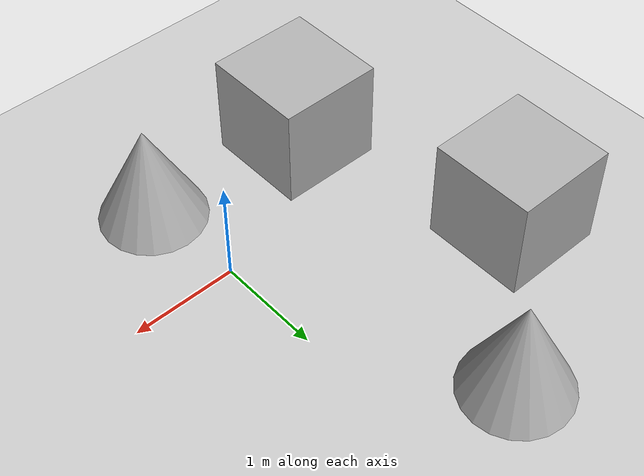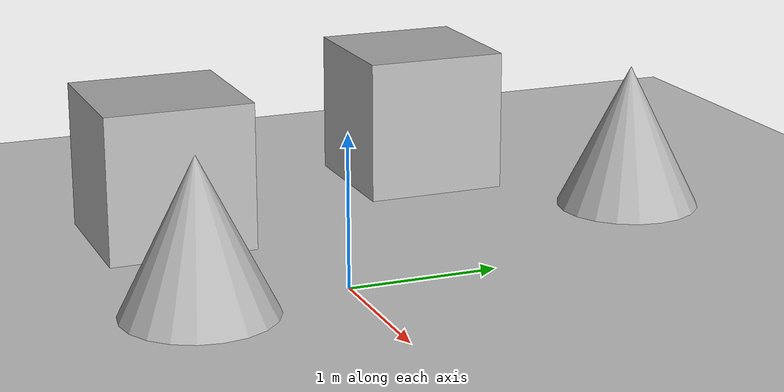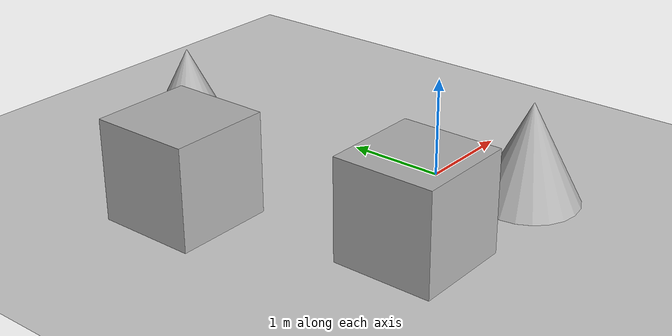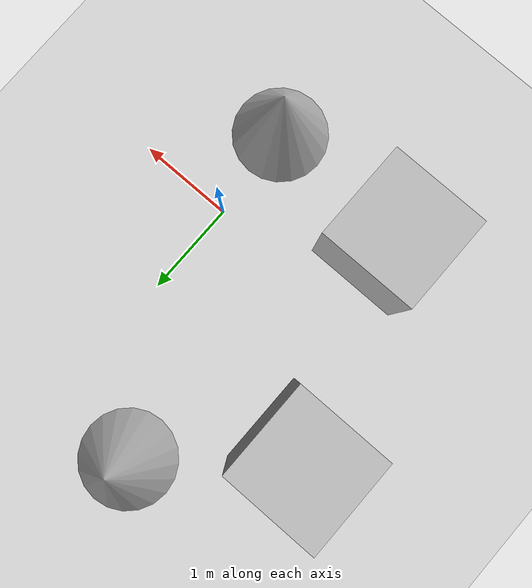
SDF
<sdf version='1.10'>
  <world name='empty'>
    <physics name='1ms' type='ignored'>
      <max_step_size>0.001</max_step_size>
      <real_time_factor>1</real_time_factor>
      <real_time_update_rate>1000</real_time_update_rate>
    </physics>
    <plugin name='gz::sim::systems::Physics' filename='gz-sim-physics-system'/>
    <plugin name='gz::sim::systems::UserCommands' filename='gz-sim-user-commands-system'/>
    <plugin name='gz::sim::systems::SceneBroadcaster' filename='gz-sim-scene-broadcaster-system'/>
    <plugin name='gz::sim::systems::Contact' filename='gz-sim-contact-system'/>

    <gravity>0 0 -9.8000000000000007</gravity>
    <magnetic_field>5.5644999999999998e-06 2.2875799999999999e-05 -4.2388400000000002e-05</magnetic_field>
    <atmosphere type='adiabatic'/>
    <scene>
      <ambient>0.400000006 0.400000006 0.400000006 1</ambient>
      <background>0.699999988 0.699999988 0.699999988 1</background>
      <shadows>true</shadows>
    </scene>
    <model name='ground_plane'>
      <static>true</static>
      <link name='link'>
        <collision name='collision'>
          <geometry>
            <plane>
              <normal>0 0 1</normal>
              <size>100 100</size>
            </plane>
          </geometry>
          <surface>
            <friction>
              <ode/>
            </friction>
            <bounce/>
            <contact/>
          </surface>
        </collision>
        <visual name='visual'>
          <geometry>
            <plane>
              <normal>0 0 1</normal>
              <size>100 100</size>
            </plane>
          </geometry>
          <material>
            <ambient>0.800000012 0.800000012 0.800000012 1</ambient>
            <diffuse>0.800000012 0.800000012 0.800000012 1</diffuse>
            <specular>0.800000012 0.800000012 0.800000012 1</specular>
          </material>
        </visual>
        <pose>0 0 0 0 0 0</pose>
        <inertial>
          <pose>0 0 0 0 0 0</pose>
          <mass>1</mass>
          <inertia>
            <ixx>1</ixx>
            <ixy>0</ixy>
            <ixz>0</ixz>
            <iyy>1</iyy>
            <iyz>0</iyz>
            <izz>1</izz>
          </inertia>
        </inertial>
        <enable_wind>false</enable_wind>
      </link>
      <pose>0 0 0 0 0 0</pose>
      <self_collide>false</self_collide>
    </model>

    <model name='cone'>
      <pose>-0.91754992658193757 2.4632058697671861 0.49999999993296756 5.2539547001122472e-17 -7.7132841038848404e-10 -1.8621681578843118e-22</pose>
      <link name='cone_link'>
        <inertial>
          <inertia>
            <ixx>0.074999999999999997</ixx>
            <ixy>0</ixy>
            <ixz>0</ixz>
            <iyy>0.074999999999999997</iyy>
            <iyz>0</iyz>
            <izz>0.074999999999999997</izz>
          </inertia>
          <mass>1</mass>
          <pose>0 0 0 0 0 0</pose>
        </inertial>
        <collision name='cone_collision'>
          <geometry>
            <cone>
              <radius>0.5</radius>
              <length>1</length>
            </cone>
          </geometry>
          <surface>
            <friction>
              <ode/>
            </friction>
            <bounce/>
            <contact/>
          </surface>
        </collision>
        <visual name='cone_visual'>
          <geometry>
            <cone>
              <radius>0.5</radius>
              <length>1</length>
            </cone>
          </geometry>
          <material>
            <ambient>0.300000012 0.300000012 0.300000012 1</ambient>
            <diffuse>0.699999988 0.699999988 0.699999988 1</diffuse>
            <specular>1 1 1 1</specular>
          </material>
        </visual>
        <pose>0 0 0 0 0 0</pose>
        <enable_wind>false</enable_wind>
      </link>
      <static>false</static>
      <self_collide>false</self_collide>
    </model>
    <model name='box'>
      <pose>-2.1319659447662773 1.2992708069186407 0.49999999990199806 6.2287739151293738e-22 9.3279666454713669e-22 -3.6315533669320137e-22</pose>
      <link name='box_link'>
        <inertial>
          <inertia>
            <ixx>0.16666</ixx>
            <ixy>0</ixy>
            <ixz>0</ixz>
            <iyy>0.16666</iyy>
            <iyz>0</iyz>
            <izz>0.16666</izz>
          </inertia>
          <mass>1</mass>
          <pose>0 0 0 0 0 0</pose>
        </inertial>
        <collision name='box_collision'>
          <geometry>
            <box>
              <size>1 1 1</size>
            </box>
          </geometry>
          <surface>
            <friction>
              <ode/>
            </friction>
            <bounce/>
            <contact/>
          </surface>
        </collision>
        <visual name='box_visual'>
          <geometry>
            <box>
              <size>1 1 1</size>
            </box>
          </geometry>
          <material>
            <ambient>0.300000012 0.300000012 0.300000012 1</ambient>
            <diffuse>0.699999988 0.699999988 0.699999988 1</diffuse>
            <specular>1 1 1 1</specular>
          </material>
        </visual>
        <pose>0 0 0 0 0 0</pose>
        <enable_wind>false</enable_wind>
      </link>
      <static>false</static>
      <self_collide>false</self_collide>
    </model>
    <model name='box_0'>
      <pose>-1.4377463794870624 -0.79048776278453536 0.49999999990199806 -2.6021893015372723e-21 1.3010946507686361e-21 -1.6928472902587593e-42</pose>
      <link name='box_link'>
        <inertial>
          <inertia>
            <ixx>0.16666</ixx>
            <ixy>0</ixy>
            <ixz>0</ixz>
            <iyy>0.16666</iyy>
            <iyz>0</iyz>
            <izz>0.16666</izz>
          </inertia>
          <mass>1</mass>
          <pose>0 0 0 0 0 0</pose>
        </inertial>
        <collision name='box_collision'>
          <geometry>
            <box>
              <size>1 1 1</size>
            </box>
          </geometry>
          <surface>
            <friction>
              <ode/>
            </friction>
            <bounce/>
            <contact/>
          </surface>
        </collision>
        <visual name='box_visual'>
          <geometry>
            <box>
              <size>1 1 1</size>
            </box>
          </geometry>
          <material>
            <ambient>0.300000012 0.300000012 0.300000012 1</ambient>
            <diffuse>0.699999988 0.699999988 0.699999988 1</diffuse>
            <specular>1 1 1 1</specular>
          </material>
        </visual>
        <pose>0 0 0 0 0 0</pose>
        <enable_wind>false</enable_wind>
      </link>
      <static>false</static>
      <self_collide>false</self_collide>
    </model>
    <model name='cone_0'>
      <pose>0.088589955297096748 -0.99287150236071298 0.49999999993296756 5.255002862794879e-17 -7.7132841034515146e-10 2.0314989719934866e-23</pose>
      <link name='cone_link'>
        <inertial>
          <inertia>
            <ixx>0.074999999999999997</ixx>
            <ixy>0</ixy>
            <ixz>0</ixz>
            <iyy>0.074999999999999997</iyy>
            <iyz>0</iyz>
            <izz>0.074999999999999997</izz>
          </inertia>
          <mass>1</mass>
          <pose>0 0 0 0 0 0</pose>
        </inertial>
        <collision name='cone_collision'>
          <geometry>
            <cone>
              <radius>0.5</radius>
              <length>1</length>
            </cone>
          </geometry>
          <surface>
            <friction>
              <ode/>
            </friction>
            <bounce/>
            <contact/>
          </surface>
        </collision>
        <visual name='cone_visual'>
          <geometry>
            <cone>
              <radius>0.5</radius>
              <length>1</length>
            </cone>
          </geometry>
          <material>
            <ambient>0.300000012 0.300000012 0.300000012 1</ambient>
            <diffuse>0.699999988 0.699999988 0.699999988 1</diffuse>
            <specular>1 1 1 1</specular>
          </material>
        </visual>
        <pose>0 0 0 0 0 0</pose>
        <enable_wind>false</enable_wind>
      </link>
      <static>false</static>
      <self_collide>false</self_collide>
    </model>
    <light name='sun' type='directional'>
      <pose>0 0 10 0 0 0</pose>
      <cast_shadows>true</cast_shadows>
      <intensity>1</intensity>
      <direction>-0.5 0.10000000000000001 -0.90000000000000002</direction>
      <diffuse>0.800000012 0.800000012 0.800000012 1</diffuse>
      <specular>0.200000003 0.200000003 0.200000003 1</specular>
      <attenuation>
        <range>1000</range>
        <linear>0.01</linear>
        <constant>0.90000000000000002</constant>
        <quadratic>0.001</quadratic>
      </attenuation>
      <spot>
        <inner_angle>0</inner_angle>
        <outer_angle>0</outer_angle>
        <falloff>0</falloff>
      </spot>
    </light>
  </world>
</sdf>
